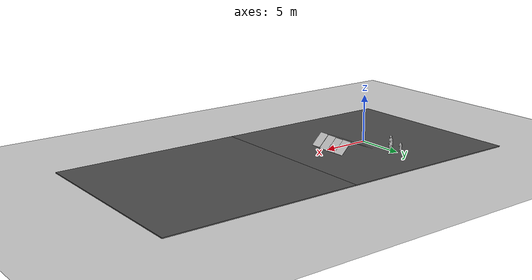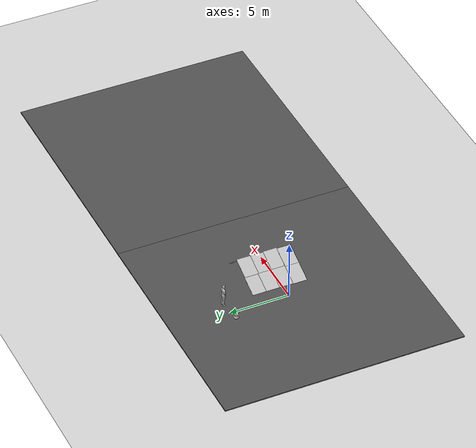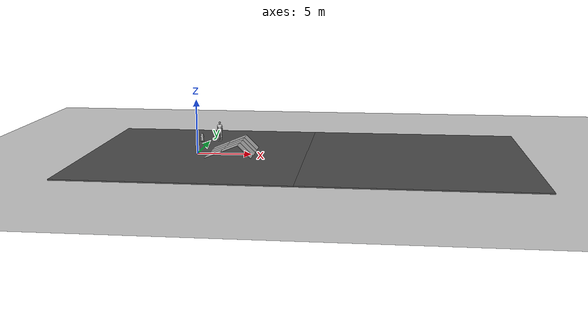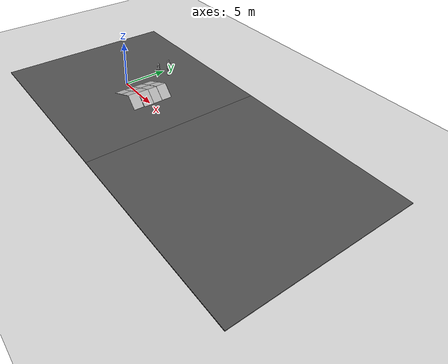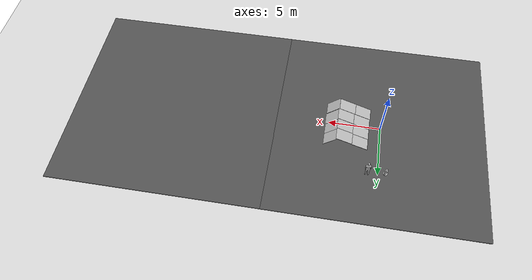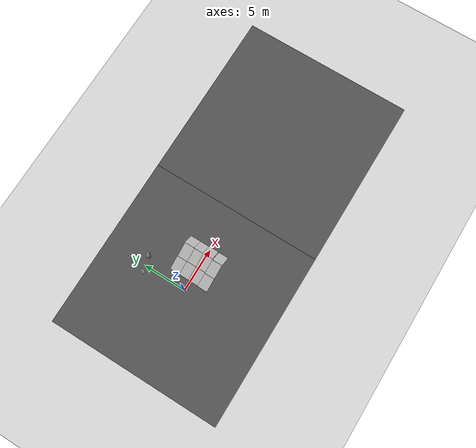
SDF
<sdf version="1.6">
 <world name="default">
  <light name="sun" type="directional">
   <pose>0 0 10 0 -0 0</pose>
   <diffuse>0.8 0.8 0.8 1</diffuse>
   <specular>0.1 0.1 0.1 1</specular>
   <attenuation>
    <range>1000</range>
    <constant>0.9</constant>
    <linear>0.01</linear>
    <quadratic>0.001</quadratic>
   </attenuation>
   <direction>-0.5 0.5 -1</direction>
  </light>
  <model name="ground_plane">
   <static>1</static>
   <link name="link">
    <collision name="collision">
     <geometry><plane><normal>0 0 1</normal><size>100 100</size></plane></geometry>
     <surface><friction><ode><mu>100</mu><mu2>50</mu2></ode></friction></surface>
    </collision>
    <visual name="visual">
     <cast_shadows>0</cast_shadows>
     <geometry><plane><normal>0 0 1</normal><size>100 100</size></plane></geometry>
     <material>
      <script><uri>file://media/materials/scripts/gazebo.material</uri><name>Gazebo/Grey</name></script>
     </material>
    </visual>
   </link>
  </model>
  <gravity>0 0 -9.8</gravity>
  <magnetic_field>6e-06 2.3e-05 -4.2e-05</magnetic_field>
  <atmosphere type="adiabatic"/>
  <physics name="default_physics" default="0" type="ode">
   <max_step_size>0.001</max_step_size>
   <real_time_factor>1</real_time_factor>
   <real_time_update_rate>1000</real_time_update_rate>
  </physics>
  <scene><ambient>0.4 0.4 0.4 1</ambient><background>0.7 0.7 0.7 1</background><shadows>1</shadows></scene>
  <spherical_coordinates>
   <surface_model>EARTH_WGS84</surface_model>
   <latitude_deg>0</latitude_deg>
   <longitude_deg>0</longitude_deg>
   <elevation>0</elevation>
   <heading_deg>0</heading_deg>
  </spherical_coordinates>
  <model name="asphalt_plane">
   <static>1</static>
   <link name="link">
    <collision name="collision"><geometry><box><size>20 20 0.1</size></box></geometry></collision>
    <visual name="visual">
     <cast_shadows>0</cast_shadows>
     <geometry><box><size>20 20 0.1</size></box></geometry>
     <material>
      <script>
       <uri>model://asphalt_plane/materials/scripts</uri>
       <uri>model://asphalt_plane/materials/textures</uri>
       <name>vrc/asphalt</name>
      </script>
     </material>
    </visual>
   </link>
   <pose>0.048227 -0.034096 0 0 -0 0</pose>
  </model>
  <model name="asphalt_plane_0">
   <static>1</static>
   <link name="link">
    <collision name="collision"><geometry><box><size>20 20 0.1</size></box></geometry></collision>
    <visual name="visual">
     <cast_shadows>0</cast_shadows>
     <geometry><box><size>20 20 0.1</size></box></geometry>
     <material>
      <script>
       <uri>model://asphalt_plane/materials/scripts</uri>
       <uri>model://asphalt_plane/materials/textures</uri>
       <name>vrc/asphalt</name>
      </script>
     </material>
    </visual>
   </link>
   <pose>20.0157 -0.037426 0 0 -0 0</pose>
  </model>
  <model name="person_standing">
   <link name="link">
    <inertial>
     <pose>0 -0.1 0.95 0 -0 0</pose>
     <mass>80</mass>
     <inertia><ixx>24.88</ixx><ixy>0</ixy><ixz>0</ixz><iyy>25.73</iyy><iyz>0</iyz><izz>2.48</izz></inertia>
    </inertial>
    <collision name="bottom">
     <pose>0 -0.1 0.01 0 -0 0</pose>
     <geometry><box><size>0.5 0.35 0.02</size></box></geometry>
    </collision>
    <collision name="person">
     <pose>0 0 0.02 0.04 -0 0</pose>
     <geometry><mesh><uri>model://person_standing/meshes/standing.dae</uri><scale>1 1 1</scale></mesh></geometry>
    </collision>
    <visual name="visual">
     <pose>0 0 0.02 0.04 -0 0</pose>
     <geometry><mesh><uri>model://person_standing/meshes/standing.dae</uri><scale>1 1 1</scale></mesh></geometry>
    </visual>
   </link>
   <pose>1.00164 5.15252 0.05 -1e-06 -1e-06 0.002897</pose>
  </model>
  <model name="fire_hydrant">
   <static>1</static>
   <link name="link">
    <collision name="collision">
     <geometry><mesh><uri>model://fire_hydrant/meshes/fire_hydrant.dae</uri><scale>1 1 1</scale></mesh></geometry>
    </collision>
    <visual name="visual">
     <geometry><mesh><uri>model://fire_hydrant/meshes/fire_hydrant.dae</uri><scale>1 1 1</scale></mesh></geometry>
    </visual>
   </link>
   <pose>-0.70337 4.77916 -0.070287 0 -0 0</pose>
  </model>
  <model name="nist_simple_ramp_120">
   <static>1</static>
   <link name="nist_simple_ramp_120_link">
    <collision name="collision">
     <geometry>
      <mesh><uri>model://nist_simple_ramp_120/meshes/nist_simple_ramp_120.dae</uri><scale>1 1 1</scale></mesh>
     </geometry>
    </collision>
    <visual name="visual">
     <geometry>
      <mesh><uri>model://nist_simple_ramp_120/meshes/nist_simple_ramp_120.dae</uri><scale>1 1 1</scale></mesh>
     </geometry>
    </visual>
   </link>
   <pose>1.60707 1.94478 -0.208921 -0.4 0 -1.5708</pose>
  </model>
  <model name="nist_simple_ramp_120_1">
   <static>1</static>
   <link name="nist_simple_ramp_120_link">
    <collision name="collision">
     <geometry>
      <mesh><uri>model://nist_simple_ramp_120/meshes/nist_simple_ramp_120.dae</uri><scale>1 1 1</scale></mesh>
     </geometry>
    </collision>
    <visual name="visual">
     <geometry>
      <mesh><uri>model://nist_simple_ramp_120/meshes/nist_simple_ramp_120.dae</uri><scale>1 1 1</scale></mesh>
     </geometry>
    </visual>
   </link>
   <pose>1.62239 0.792541 -0.19985 -0.4 -1e-06 -1.5708</pose>
  </model>
  <model name="nist_simple_ramp_120_0_clone">
   <static>1</static>
   <link name="nist_simple_ramp_120_link">
    <collision name="collision">
     <geometry>
      <mesh><uri>model://nist_simple_ramp_120/meshes/nist_simple_ramp_120.dae</uri><scale>1 1 1</scale></mesh>
     </geometry>
    </collision>
    <visual name="visual">
     <geometry>
      <mesh><uri>model://nist_simple_ramp_120/meshes/nist_simple_ramp_120.dae</uri><scale>1 1 1</scale></mesh>
     </geometry>
    </visual>
   </link>
   <pose>1.61397 -0.333698 -0.19832 -0.4 0 -1.5708</pose>
  </model>
  <model name="nist_simple_ramp_120_0_clone_0">
   <static>1</static>
   <link name="nist_simple_ramp_120_link">
    <collision name="collision">
     <geometry>
      <mesh><uri>model://nist_simple_ramp_120/meshes/nist_simple_ramp_120.dae</uri><scale>1 1 1</scale></mesh>
     </geometry>
    </collision>
    <visual name="visual">
     <geometry>
      <mesh><uri>model://nist_simple_ramp_120/meshes/nist_simple_ramp_120.dae</uri><scale>1 1 1</scale></mesh>
     </geometry>
    </visual>
   </link>
   <pose>1.53615 -1.48193 -0.212877 -0.4 0 -1.5708</pose>
  </model>
  <model name="nist_simple_ramp_120_0_clone_1">
   <static>1</static>
   <link name="nist_simple_ramp_120_link">
    <collision name="collision">
     <geometry>
      <mesh><uri>model://nist_simple_ramp_120/meshes/nist_simple_ramp_120.dae</uri><scale>1 1 1</scale></mesh>
     </geometry>
    </collision>
    <visual name="visual">
     <geometry>
      <mesh><uri>model://nist_simple_ramp_120/meshes/nist_simple_ramp_120.dae</uri><scale>1 1 1</scale></mesh>
     </geometry>
    </visual>
   </link>
   <pose>3.14868 1.92329 0.429593 -0.4 0 -1.5708</pose>
  </model>
  <model name="nist_simple_ramp_120_0_clone_2">
   <static>1</static>
   <link name="nist_simple_ramp_120_link">
    <collision name="collision">
     <geometry>
      <mesh><uri>model://nist_simple_ramp_120/meshes/nist_simple_ramp_120.dae</uri><scale>1 1 1</scale></mesh>
     </geometry>
    </collision>
    <visual name="visual">
     <geometry>
      <mesh><uri>model://nist_simple_ramp_120/meshes/nist_simple_ramp_120.dae</uri><scale>1 1 1</scale></mesh>
     </geometry>
    </visual>
   </link>
   <pose>3.14131 0.81167 0.397442 -0.4 0 -1.5708</pose>
  </model>
  <model name="nist_simple_ramp_120_0_clone_3">
   <static>1</static>
   <link name="nist_simple_ramp_120_link">
    <collision name="collision">
     <geometry>
      <mesh><uri>model://nist_simple_ramp_120/meshes/nist_simple_ramp_120.dae</uri><scale>1 1 1</scale></mesh>
     </geometry>
    </collision>
    <visual name="visual">
     <geometry>
      <mesh><uri>model://nist_simple_ramp_120/meshes/nist_simple_ramp_120.dae</uri><scale>1 1 1</scale></mesh>
     </geometry>
    </visual>
   </link>
   <pose>3.16917 -0.341663 0.432274 -0.4 0 -1.5708</pose>
  </model>
  <model name="nist_simple_ramp_120_0_clone_4">
   <static>1</static>
   <link name="nist_simple_ramp_120_link">
    <collision name="collision">
     <geometry>
      <mesh><uri>model://nist_simple_ramp_120/meshes/nist_simple_ramp_120.dae</uri><scale>1 1 1</scale></mesh>
     </geometry>
    </collision>
    <visual name="visual">
     <geometry>
      <mesh><uri>model://nist_simple_ramp_120/meshes/nist_simple_ramp_120.dae</uri><scale>1 1 1</scale></mesh>
     </geometry>
    </visual>
   </link>
   <pose>3.08794 -1.48696 0.407608 -0.4 0 -1.5708</pose>
  </model>
  <model name="nist_simple_ramp_120_0">
   <static>1</static>
   <link name="nist_simple_ramp_120_link">
    <collision name="collision">
     <geometry>
      <mesh><uri>model://nist_simple_ramp_120/meshes/nist_simple_ramp_120.dae</uri><scale>1 1 1</scale></mesh>
     </geometry>
    </collision>
    <visual name="visual">
     <geometry>
      <mesh><uri>model://nist_simple_ramp_120/meshes/nist_simple_ramp_120.dae</uri><scale>1 1 1</scale></mesh>
     </geometry>
    </visual>
   </link>
   <pose>4.69729 -1.50575 0.103085 0 -0 1.5708</pose>
  </model>
  <model name="nist_simple_ramp_120_0_clone_5">
   <static>1</static>
   <link name="nist_simple_ramp_120_link">
    <collision name="collision">
     <geometry>
      <mesh><uri>model://nist_simple_ramp_120/meshes/nist_simple_ramp_120.dae</uri><scale>1 1 1</scale></mesh>
     </geometry>
    </collision>
    <visual name="visual">
     <geometry>
      <mesh><uri>model://nist_simple_ramp_120/meshes/nist_simple_ramp_120.dae</uri><scale>1 1 1</scale></mesh>
     </geometry>
    </visual>
   </link>
   <pose>4.72898 -0.272827 0.071193 0 -0 1.5708</pose>
  </model>
  <model name="nist_simple_ramp_120_0_clone_6">
   <static>1</static>
   <link name="nist_simple_ramp_120_link">
    <collision name="collision">
     <geometry>
      <mesh><uri>model://nist_simple_ramp_120/meshes/nist_simple_ramp_120.dae</uri><scale>1 1 1</scale></mesh>
     </geometry>
    </collision>
    <visual name="visual">
     <geometry>
      <mesh><uri>model://nist_simple_ramp_120/meshes/nist_simple_ramp_120.dae</uri><scale>1 1 1</scale></mesh>
     </geometry>
    </visual>
   </link>
   <pose>4.69686 0.820071 0.049493 0 -0 1.5708</pose>
  </model>
  <model name="nist_simple_ramp_120_0_clone_7">
   <static>1</static>
   <link name="nist_simple_ramp_120_link">
    <collision name="collision">
     <geometry>
      <mesh><uri>model://nist_simple_ramp_120/meshes/nist_simple_ramp_120.dae</uri><scale>1 1 1</scale></mesh>
     </geometry>
    </collision>
    <visual name="visual">
     <geometry>
      <mesh><uri>model://nist_simple_ramp_120/meshes/nist_simple_ramp_120.dae</uri><scale>1 1 1</scale></mesh>
     </geometry>
    </visual>
   </link>
   <pose>4.69526 1.98294 0.063143 0 -0 1.5708</pose>
  </model>
 </world>
</sdf>
